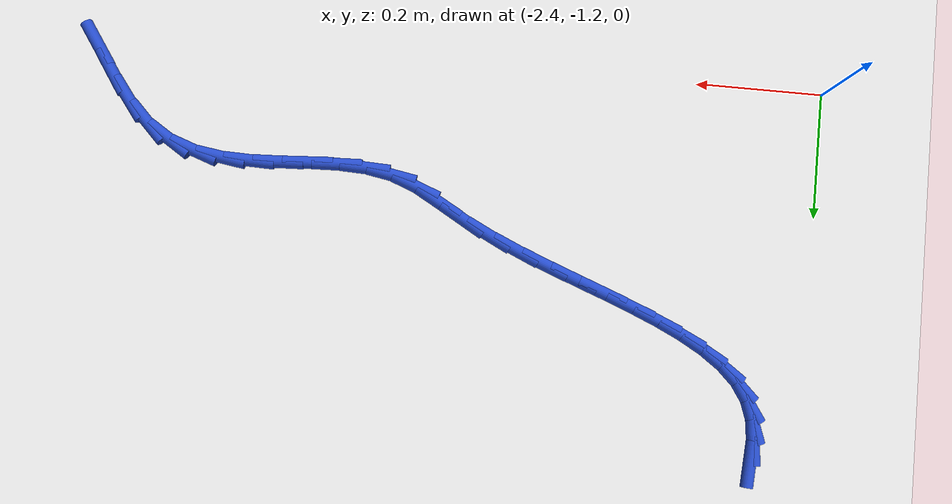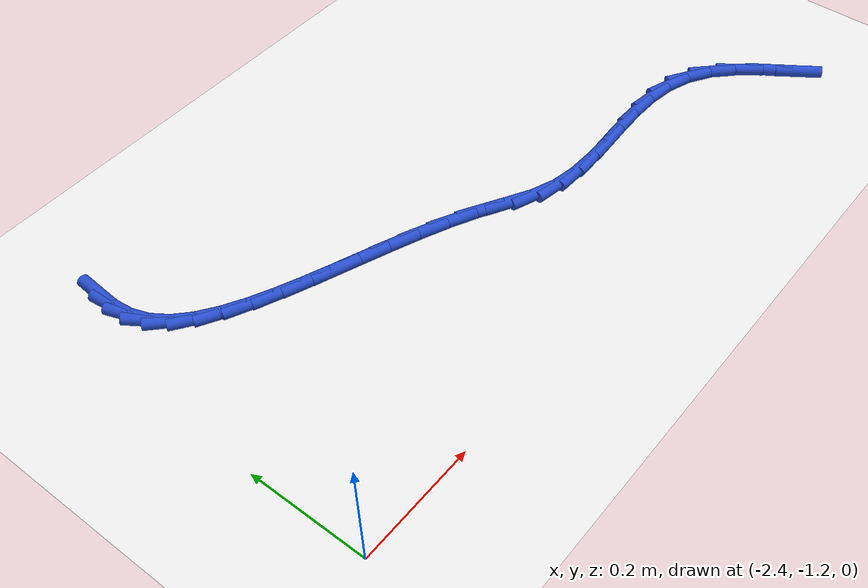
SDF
<sdf version="1.6">
 <world name="default">
  <model name="ground_plane">
   <static>1</static>
   <link name="link">
    <collision name="collision">
     <geometry><plane><normal>0 0 1</normal><size>100 100</size></plane></geometry>
     <surface><friction><ode><mu>100</mu><mu2>50</mu2></ode></friction></surface>
    </collision>
    <visual name="visual">
     <cast_shadows>0</cast_shadows>
     <geometry><plane><normal>0 0 1</normal><size>100 100</size></plane></geometry>
     <material>
      <script><uri>file://media/materials/scripts/gazebo.material</uri><name>Gazebo/WhiteGlow</name></script>
     </material>
    </visual>
   </link>
  </model>
  <model name="line">
   <link name="link_105">
    <pose>-2.321012423198976 -0.612016567173622 0.01 0 1.57 1.4993438975417979</pose>
    <collision name="collision">
     <geometry><cylinder><radius>0.01</radius><length>0.08</length></cylinder></geometry>
    </collision>
    <visual name="visual">
     <material>
      <script><name>Gazebo/Blue</name><uri>file://media/materials/scripts/gazebo.material</uri></script>
     </material>
     <geometry><cylinder><radius>0.01</radius><length>0.08</length></cylinder></geometry>
    </visual>
   </link>
   <link name="link_106">
    <pose>-2.32342443351708 -0.645715968948994 0.01 0 1.57 -1.4599482059630704</pose>
    <collision name="collision">
     <geometry><cylinder><radius>0.01</radius><length>0.08</length></cylinder></geometry>
    </collision>
    <visual name="visual">
     <material>
      <script><name>Gazebo/Blue</name><uri>file://media/materials/scripts/gazebo.material</uri></script>
     </material>
     <geometry><cylinder><radius>0.01</radius><length>0.08</length></cylinder></geometry>
    </visual>
   </link>
   <link name="link_107">
    <pose>-2.3199342755469483 -0.6770728502483312 0.01 0 1.57 -1.2326796398596402</pose>
    <collision name="collision">
     <geometry><cylinder><radius>0.01</radius><length>0.08</length></cylinder></geometry>
    </collision>
    <visual name="visual">
     <material>
      <script><name>Gazebo/Blue</name><uri>file://media/materials/scripts/gazebo.material</uri></script>
     </material>
     <geometry><cylinder><radius>0.01</radius><length>0.08</length></cylinder></geometry>
    </visual>
   </link>
   <link name="link_108">
    <pose>-2.309785656555312 -0.705935368799316 0.01 0 1.57 -0.9834756262881388</pose>
    <collision name="collision">
     <geometry><cylinder><radius>0.01</radius><length>0.08</length></cylinder></geometry>
    </collision>
    <visual name="visual">
     <material>
      <script><name>Gazebo/Blue</name><uri>file://media/materials/scripts/gazebo.material</uri></script>
     </material>
     <geometry><cylinder><radius>0.01</radius><length>0.08</length></cylinder></geometry>
    </visual>
   </link>
   <link name="link_109">
    <pose>-2.2923141212465765 -0.732181431566497 0.01 0 1.57 -0.7721638899224844</pose>
    <collision name="collision">
     <geometry><cylinder><radius>0.01</radius><length>0.08</length></cylinder></geometry>
    </collision>
    <visual name="visual">
     <material>
      <script><name>Gazebo/Blue</name><uri>file://media/materials/scripts/gazebo.material</uri></script>
     </material>
     <geometry><cylinder><radius>0.01</radius><length>0.08</length></cylinder></geometry>
    </visual>
   </link>
   <link name="link_110">
    <pose>-2.267846342934525 -0.7560100054275775 0.01 0 1.57 -0.6201867712185356</pose>
    <collision name="collision">
     <geometry><cylinder><radius>0.01</radius><length>0.08</length></cylinder></geometry>
    </collision>
    <visual name="visual">
     <material>
      <script><name>Gazebo/Blue</name><uri>file://media/materials/scripts/gazebo.material</uri></script>
     </material>
     <geometry><cylinder><radius>0.01</radius><length>0.08</length></cylinder></geometry>
    </visual>
   </link>
   <link name="link_111">
    <pose>-2.2373138953823046 -0.7778160048738259 0.01 0 1.57 -0.5150299880636047</pose>
    <collision name="collision">
     <geometry><cylinder><radius>0.01</radius><length>0.08</length></cylinder></geometry>
    </collision>
    <visual name="visual">
     <material>
      <script><name>Gazebo/Blue</name><uri>file://media/materials/scripts/gazebo.material</uri></script>
     </material>
     <geometry><cylinder><radius>0.01</radius><length>0.08</length></cylinder></geometry>
    </visual>
   </link>
   <link name="link_112">
    <pose>-2.2016569900532326 -0.7979971424382977 0.01 0 1.57 -0.4440510922035382</pose>
    <collision name="collision">
     <geometry><cylinder><radius>0.01</radius><length>0.08</length></cylinder></geometry>
    </collision>
    <visual name="visual">
     <material>
      <script><name>Gazebo/Blue</name><uri>file://media/materials/scripts/gazebo.material</uri></script>
     </material>
     <geometry><cylinder><radius>0.01</radius><length>0.08</length></cylinder></geometry>
    </visual>
   </link>
   <link name="link_113">
    <pose>-2.1618158384106247 -0.8169511306540487 0.01 0 1.57 -0.3981955357027612</pose>
    <collision name="collision">
     <geometry><cylinder><radius>0.01</radius><length>0.08</length></cylinder></geometry>
    </collision>
    <visual name="visual">
     <material>
      <script><name>Gazebo/Blue</name><uri>file://media/materials/scripts/gazebo.material</uri></script>
     </material>
     <geometry><cylinder><radius>0.01</radius><length>0.08</length></cylinder></geometry>
    </visual>
   </link>
   <link name="link_114">
    <pose>-2.1187306519177964 -0.8350756820541343 0.01 0 1.57 -0.37168612033203063</pose>
    <collision name="collision">
     <geometry><cylinder><radius>0.01</radius><length>0.08</length></cylinder></geometry>
    </collision>
    <visual name="visual">
     <material>
      <script><name>Gazebo/Blue</name><uri>file://media/materials/scripts/gazebo.material</uri></script>
     </material>
     <geometry><cylinder><radius>0.01</radius><length>0.08</length></cylinder></geometry>
    </visual>
   </link>
   <link name="link_115">
    <pose>-2.0733416420380633 -0.8527685091716102 0.01 0 1.57 -0.3611422434609458</pose>
    <collision name="collision">
     <geometry><cylinder><radius>0.01</radius><length>0.08</length></cylinder></geometry>
    </collision>
    <visual name="visual">
     <material>
      <script><name>Gazebo/Blue</name><uri>file://media/materials/scripts/gazebo.material</uri></script>
     </material>
     <geometry><cylinder><radius>0.01</radius><length>0.08</length></cylinder></geometry>
    </visual>
   </link>
   <link name="link_116">
    <pose>-2.0265890202347427 -0.8704273245395311 0.01 0 1.57 -0.3649170856082895</pose>
    <collision name="collision">
     <geometry><cylinder><radius>0.01</radius><length>0.08</length></cylinder></geometry>
    </collision>
    <visual name="visual">
     <material>
      <script><name>Gazebo/Blue</name><uri>file://media/materials/scripts/gazebo.material</uri></script>
     </material>
     <geometry><cylinder><radius>0.01</radius><length>0.08</length></cylinder></geometry>
    </visual>
   </link>
   <link name="link_117">
    <pose>-1.9794129979711497 -0.8884498406909528 0.01 0 1.57 -0.3827260298515634</pose>
    <collision name="collision">
     <geometry><cylinder><radius>0.01</radius><length>0.08</length></cylinder></geometry>
    </collision>
    <visual name="visual">
     <material>
      <script><name>Gazebo/Blue</name><uri>file://media/materials/scripts/gazebo.material</uri></script>
     </material>
     <geometry><cylinder><radius>0.01</radius><length>0.08</length></cylinder></geometry>
    </visual>
   </link>
   <link name="link_118">
    <pose>-1.9327537867106006 -0.907233770158931 0.01 0 1.57 -0.4155090069119013</pose>
    <collision name="collision">
     <geometry><cylinder><radius>0.01</radius><length>0.08</length></cylinder></geometry>
    </collision>
    <visual name="visual">
     <material>
      <script><name>Gazebo/Blue</name><uri>file://media/materials/scripts/gazebo.material</uri></script>
     </material>
     <geometry><cylinder><radius>0.01</radius><length>0.08</length></cylinder></geometry>
    </visual>
   </link>
   <link name="link_119">
    <pose>-1.887551597916411 -0.9271768254765207 0.01 0 1.57 -0.46546660516062593</pose>
    <collision name="collision">
     <geometry><cylinder><radius>0.01</radius><length>0.08</length></cylinder></geometry>
    </collision>
    <visual name="visual">
     <material>
      <script><name>Gazebo/Blue</name><uri>file://media/materials/scripts/gazebo.material</uri></script>
     </material>
     <geometry><cylinder><radius>0.01</radius><length>0.08</length></cylinder></geometry>
    </visual>
   </link>
   <link name="link_120">
    <pose>-1.8447466430518966 -0.9486767191767783 0.01 0 1.57 -0.5265410978867734</pose>
    <collision name="collision">
     <geometry><cylinder><radius>0.01</radius><length>0.08</length></cylinder></geometry>
    </collision>
    <visual name="visual">
     <material>
      <script><name>Gazebo/Blue</name><uri>file://media/materials/scripts/gazebo.material</uri></script>
     </material>
     <geometry><cylinder><radius>0.01</radius><length>0.08</length></cylinder></geometry>
    </visual>
   </link>
   <link name="link_121">
    <pose>-1.8050109540481298 -0.9717742825724356 0.01 0 1.57 -0.511793135492291</pose>
    <collision name="collision">
     <geometry><cylinder><radius>0.01</radius><length>0.08</length></cylinder></geometry>
    </collision>
    <visual name="visual">
     <material>
      <script><name>Gazebo/Blue</name><uri>file://media/materials/scripts/gazebo.material</uri></script>
     </material>
     <geometry><cylinder><radius>0.01</radius><length>0.08</length></cylinder></geometry>
    </visual>
   </link>
   <link name="link_122">
    <pose>-1.7666294891394612 -0.9933337370136607 0.01 0 1.57 -0.3665383298962341</pose>
    <collision name="collision">
     <geometry><cylinder><radius>0.01</radius><length>0.08</length></cylinder></geometry>
    </collision>
    <visual name="visual">
     <material>
      <script><name>Gazebo/Blue</name><uri>file://media/materials/scripts/gazebo.material</uri></script>
     </material>
     <geometry><cylinder><radius>0.01</radius><length>0.08</length></cylinder></geometry>
    </visual>
   </link>
   <link name="link_123">
    <pose>-1.726694311955569 -1.0086642944151438 0.01 0 1.57 -0.17550665366746143</pose>
    <collision name="collision">
     <geometry><cylinder><radius>0.01</radius><length>0.08</length></cylinder></geometry>
    </collision>
    <visual name="visual">
     <material>
      <script><name>Gazebo/Blue</name><uri>file://media/materials/scripts/gazebo.material</uri></script>
     </material>
     <geometry><cylinder><radius>0.01</radius><length>0.08</length></cylinder></geometry>
    </visual>
   </link>
   <link name="link_124">
    <pose>-1.6839767807559374 -1.016239443616883 0.01 0 1.57 -0.04158875233341732</pose>
    <collision name="collision">
     <geometry><cylinder><radius>0.01</radius><length>0.08</length></cylinder></geometry>
    </collision>
    <visual name="visual">
     <material>
      <script><name>Gazebo/Blue</name><uri>file://media/materials/scripts/gazebo.material</uri></script>
     </material>
     <geometry><cylinder><radius>0.01</radius><length>0.08</length></cylinder></geometry>
    </visual>
   </link>
   <link name="link_125">
    <pose>-1.639147697924173 -1.018104904879867 0.01 0 1.57 0.03482704646131054</pose>
    <collision name="collision">
     <geometry><cylinder><radius>0.01</radius><length>0.08</length></cylinder></geometry>
    </collision>
    <visual name="visual">
     <material>
      <script><name>Gazebo/Blue</name><uri>file://media/materials/scripts/gazebo.material</uri></script>
     </material>
     <geometry><cylinder><radius>0.01</radius><length>0.08</length></cylinder></geometry>
    </visual>
   </link>
   <link name="link_126">
    <pose>-1.5929788572130723 -1.01649633010756 0.01 0 1.57 0.06083953369630878</pose>
    <collision name="collision">
     <geometry><cylinder><radius>0.01</radius><length>0.08</length></cylinder></geometry>
    </collision>
    <visual name="visual">
     <material>
      <script><name>Gazebo/Blue</name><uri>file://media/materials/scripts/gazebo.material</uri></script>
     </material>
     <geometry><cylinder><radius>0.01</radius><length>0.08</length></cylinder></geometry>
    </visual>
   </link>
   <link name="link_127">
    <pose>-1.5462420523754377 -1.013649371203427 0.01 0 1.57 0.0397291991711499</pose>
    <collision name="collision">
     <geometry><cylinder><radius>0.01</radius><length>0.08</length></cylinder></geometry>
    </collision>
    <visual name="visual">
     <material>
      <script><name>Gazebo/Blue</name><uri>file://media/materials/scripts/gazebo.material</uri></script>
     </material>
     <geometry><cylinder><radius>0.01</radius><length>0.08</length></cylinder></geometry>
    </visual>
   </link>
   <link name="link_128">
    <pose>-1.4997090771640667 -1.011799680070932 0.01 0 1.57 -0.03035303125430796</pose>
    <collision name="collision">
     <geometry><cylinder><radius>0.01</radius><length>0.08</length></cylinder></geometry>
    </collision>
    <visual name="visual">
     <material>
      <script><name>Gazebo/Blue</name><uri>file://media/materials/scripts/gazebo.material</uri></script>
     </material>
     <geometry><cylinder><radius>0.01</radius><length>0.08</length></cylinder></geometry>
    </visual>
   </link>
   <link name="link_129">
    <pose>-1.45415172533176 -1.01318290861354 0.01 0 1.57 -0.15514152239794435</pose>
    <collision name="collision">
     <geometry><cylinder><radius>0.01</radius><length>0.08</length></cylinder></geometry>
    </collision>
    <visual name="visual">
     <material>
      <script><name>Gazebo/Blue</name><uri>file://media/materials/scripts/gazebo.material</uri></script>
     </material>
     <geometry><cylinder><radius>0.01</radius><length>0.08</length></cylinder></geometry>
    </visual>
   </link>
   <link name="link_130">
    <pose>-1.410341790631315 -1.0200347087347152 0.01 0 1.57 -0.33892273025391617</pose>
    <collision name="collision">
     <geometry><cylinder><radius>0.01</radius><length>0.08</length></cylinder></geometry>
    </collision>
    <visual name="visual">
     <material>
      <script><name>Gazebo/Blue</name><uri>file://media/materials/scripts/gazebo.material</uri></script>
     </material>
     <geometry><cylinder><radius>0.01</radius><length>0.08</length></cylinder></geometry>
    </visual>
   </link>
   <link name="link_131">
    <pose>-1.369051066815532 -1.0345907323379226 0.01 0 1.57 -0.5725728565552174</pose>
    <collision name="collision">
     <geometry><cylinder><radius>0.01</radius><length>0.08</length></cylinder></geometry>
    </collision>
    <visual name="visual">
     <material>
      <script><name>Gazebo/Blue</name><uri>file://media/materials/scripts/gazebo.material</uri></script>
     </material>
     <geometry><cylinder><radius>0.01</radius><length>0.08</length></cylinder></geometry>
    </visual>
   </link>
   <link name="link_132">
    <pose>-1.3310511768270514 -1.0590856303896423 0.01 0 1.57 -0.7970925493803188</pose>
    <collision name="collision">
     <geometry><cylinder><radius>0.01</radius><length>0.08</length></cylinder></geometry>
    </collision>
    <visual name="visual">
     <material>
      <script><name>Gazebo/Blue</name><uri>file://media/materials/scripts/gazebo.material</uri></script>
     </material>
     <geometry><cylinder><radius>0.01</radius><length>0.08</length></cylinder></geometry>
    </visual>
   </link>
   <link name="link_133">
    <pose>-1.2968336859877678 -1.0941129334932156 0.01 0 1.57 -0.9285912742841997</pose>
    <collision name="collision">
     <geometry><cylinder><radius>0.01</radius><length>0.08</length></cylinder></geometry>
    </collision>
    <visual name="visual">
     <material>
      <script><name>Gazebo/Blue</name><uri>file://media/materials/scripts/gazebo.material</uri></script>
     </material>
     <geometry><cylinder><radius>0.01</radius><length>0.08</length></cylinder></geometry>
    </visual>
   </link>
   <link name="link_134">
    <pose>-1.2660397146195044 -1.1352826170692076 0.01 0 1.57 -0.9843823470565686</pose>
    <collision name="collision">
     <geometry><cylinder><radius>0.01</radius><length>0.08</length></cylinder></geometry>
    </collision>
    <visual name="visual">
     <material>
      <script><name>Gazebo/Blue</name><uri>file://media/materials/scripts/gazebo.material</uri></script>
     </material>
     <geometry><cylinder><radius>0.01</radius><length>0.08</length></cylinder></geometry>
    </visual>
   </link>
   <link name="link_135">
    <pose>-1.2381495528416133 -1.1772622014834682 0.01 0 1.57 -0.9729755534405473</pose>
    <collision name="collision">
     <geometry><cylinder><radius>0.01</radius><length>0.08</length></cylinder></geometry>
    </collision>
    <visual name="visual">
     <material>
      <script><name>Gazebo/Blue</name><uri>file://media/materials/scripts/gazebo.material</uri></script>
     </material>
     <geometry><cylinder><radius>0.01</radius><length>0.08</length></cylinder></geometry>
    </visual>
   </link>
  </model>
 </world>
</sdf>
